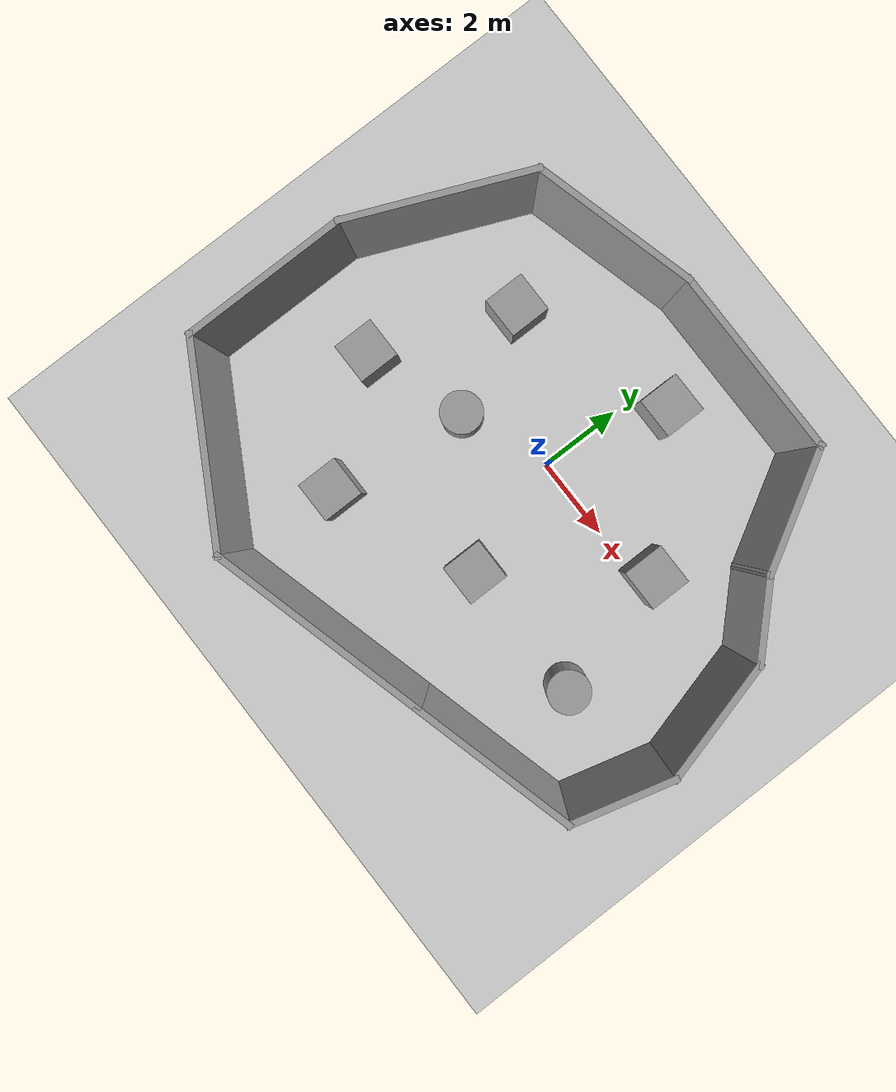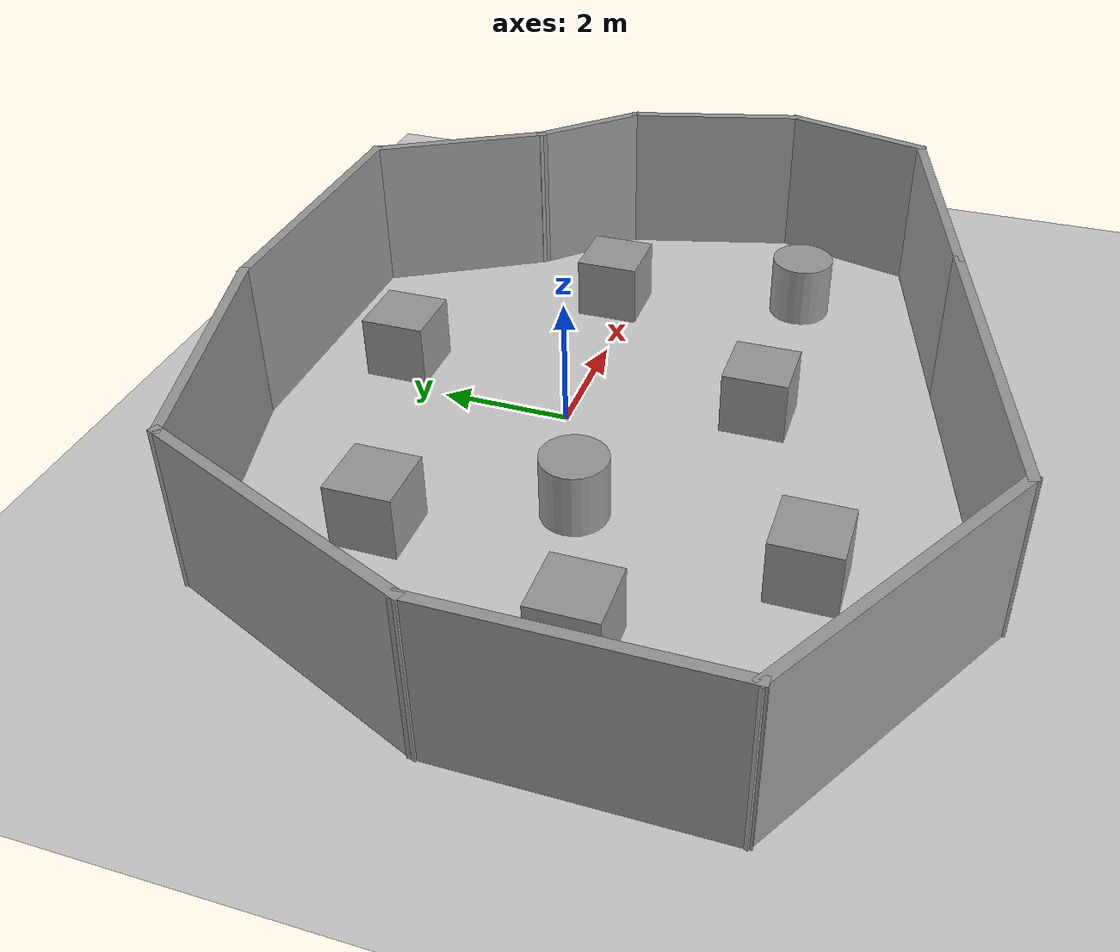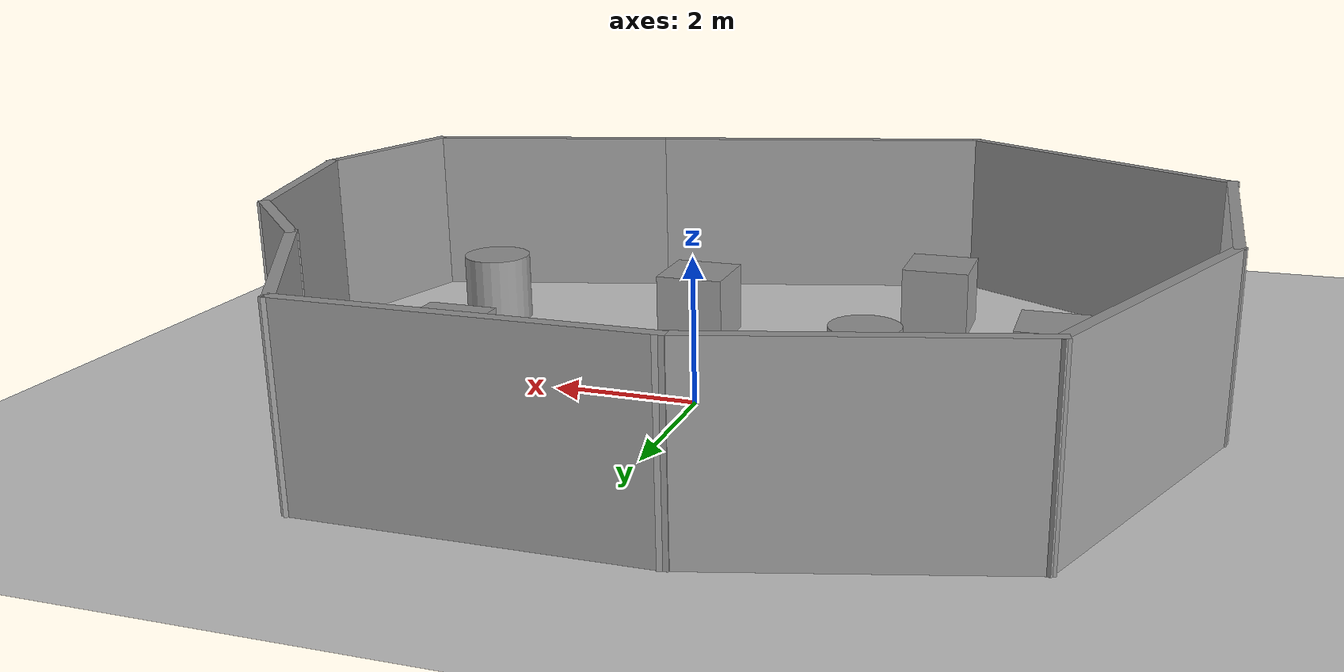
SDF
<sdf version="1.7">
 <world name="default">
  <light name="sun" type="directional">
   <pose>0 0 10 0 -0 0</pose>
   <diffuse>0.8 0.8 0.8 1</diffuse>
   <specular>0.2 0.2 0.2 1</specular>
   <attenuation>
    <range>1000</range>
    <constant>0.9</constant>
    <linear>0.01</linear>
    <quadratic>0.001</quadratic>
   </attenuation>
   <direction>-0.5 0.1 -0.9</direction>
   <spot><inner_angle>0</inner_angle><outer_angle>0</outer_angle><falloff>0</falloff></spot>
  </light>
  <model name="ground_plane">
   <static>1</static>
   <link name="link">
    <collision name="collision">
     <geometry><plane><normal>0 0 1</normal><size>100 100</size></plane></geometry>
     <surface><friction><ode><mu>100</mu><mu2>50</mu2></ode></friction></surface>
    </collision>
    <visual name="visual">
     <cast_shadows>0</cast_shadows>
     <geometry><plane><normal>0 0 1</normal><size>100 100</size></plane></geometry>
     <material>
      <script><uri>file://media/materials/scripts/gazebo.material</uri><name>Gazebo/Grey</name></script>
     </material>
    </visual>
   </link>
  </model>
  <gravity>0 0 -9.8</gravity>
  <magnetic_field>6e-06 2.3e-05 -4.2e-05</magnetic_field>
  <atmosphere type="adiabatic"/>
  <physics type="ode">
   <max_step_size>0.001</max_step_size>
   <real_time_factor>1</real_time_factor>
   <real_time_update_rate>1000</real_time_update_rate>
  </physics>
  <scene><ambient>0.4 0.4 0.4 1</ambient><background>0.7 0.7 0.7 1</background><shadows>1</shadows></scene>
  <audio><device>default</device></audio>
  <spherical_coordinates>
   <surface_model>EARTH_WGS84</surface_model>
   <latitude_deg>0</latitude_deg>
   <longitude_deg>0</longitude_deg>
   <elevation>0</elevation>
   <heading_deg>0</heading_deg>
  </spherical_coordinates>
  <model name="Untitled1">
   <pose>-0.033269 -1.09782 0 0 -0 0</pose>
   <link name="Wall_10">
    <collision name="Wall_10_Collision">
     <geometry><box><size>3 0.15 2.5</size></box></geometry>
     <pose>0 0 1.25 0 -0 0</pose>
    </collision>
    <visual name="Wall_10_Visual">
     <pose>0 0 1.25 0 -0 0</pose>
     <geometry><box><size>3 0.15 2.5</size></box></geometry>
     <material>
      <script><uri>file://media/materials/scripts/gazebo.material</uri><name>Gazebo/Grey</name></script>
      <ambient>1 1 1 1</ambient>
     </material>
     <meta><layer>0</layer></meta>
    </visual>
    <pose>6.25497 0.405019 0 0 -0 1.8326</pose>
   </link>
   <link name="Wall_11">
    <collision name="Wall_11_Collision">
     <geometry><box><size>2 0.15 2.5</size></box></geometry>
     <pose>0 0 1.25 0 -0 0</pose>
    </collision>
    <visual name="Wall_11_Visual">
     <pose>0 0 1.25 0 -0 0</pose>
     <geometry><box><size>2 0.15 2.5</size></box></geometry>
     <material>
      <script><uri>file://media/materials/scripts/gazebo.material</uri><name>Gazebo/Grey</name></script>
      <ambient>1 1 1 1</ambient>
     </material>
     <meta><layer>0</layer></meta>
    </visual>
    <pose>5.23208 2.43554 0 0 -0 2.35619</pose>
   </link>
   <link name="Wall_12">
    <collision name="Wall_12_Collision">
     <geometry><box><size>3 0.15 2.5</size></box></geometry>
     <pose>0 0 1.25 0 -0 0</pose>
    </collision>
    <visual name="Wall_12_Visual">
     <pose>0 0 1.25 0 -0 0</pose>
     <geometry><box><size>3 0.15 2.5</size></box></geometry>
     <material>
      <script><uri>file://media/materials/scripts/gazebo.material</uri><name>Gazebo/Grey</name></script>
      <ambient>1 1 1 1</ambient>
     </material>
     <meta><layer>0</layer></meta>
    </visual>
    <pose>3.86551 4.3237 0 0 -0 2.0944</pose>
   </link>
   <link name="Wall_13">
    <collision name="Wall_13_Collision">
     <geometry><box><size>4.5 0.15 2.5</size></box></geometry>
     <pose>0 0 1.25 0 -0 0</pose>
    </collision>
    <visual name="Wall_13_Visual">
     <pose>0 0 1.25 0 -0 0</pose>
     <geometry><box><size>4.5 0.15 2.5</size></box></geometry>
     <material>
      <script><uri>file://media/materials/scripts/gazebo.material</uri><name>Gazebo/Grey</name></script>
      <ambient>1 1 1 1</ambient>
     </material>
     <meta><layer>0</layer></meta>
    </visual>
    <pose>0.978005 5.55778 0 0 -0 3.14159</pose>
   </link>
   <link name="Wall_14">
    <collision name="Wall_14_Collision">
     <geometry><box><size>4 0.15 2.5</size></box></geometry>
     <pose>0 0 1.25 0 -0 0</pose>
    </collision>
    <visual name="Wall_14_Visual">
     <pose>0 0 1.25 0 -0 0</pose>
     <geometry><box><size>4 0.15 2.5</size></box></geometry>
     <material>
      <script><uri>file://media/materials/scripts/gazebo.material</uri><name>Gazebo/Grey</name></script>
      <ambient>1 1 1 1</ambient>
     </material>
     <meta><layer>0</layer></meta>
    </visual>
    <pose>-3.0564 5.05956 0 0 -0 -2.87979</pose>
   </link>
   <link name="Wall_15">
    <collision name="Wall_15_Collision">
     <geometry><box><size>4.46682 0.15 2.5</size></box></geometry>
     <pose>0 0 1.25 0 -0 0</pose>
    </collision>
    <visual name="Wall_15_Visual">
     <pose>0 0 1.25 0 -0 0</pose>
     <geometry><box><size>4.46682 0.15 2.5</size></box></geometry>
     <material>
      <script><uri>file://media/materials/scripts/gazebo.material</uri><name>Gazebo/Grey</name></script>
      <ambient>1 1 1 1</ambient>
     </material>
     <meta><layer>0</layer></meta>
    </visual>
    <pose>-5.7645 2.57677 0 0 -0 -1.97491</pose>
   </link>
   <link name="Wall_5">
    <collision name="Wall_5_Collision">
     <geometry><box><size>4 0.15 2.5</size></box></geometry>
     <pose>0 0 1.25 0 -0 0</pose>
    </collision>
    <visual name="Wall_5_Visual">
     <pose>0 0 1.25 0 -0 0</pose>
     <geometry><box><size>4 0.15 2.5</size></box></geometry>
     <material>
      <script><uri>file://media/materials/scripts/gazebo.material</uri><name>Gazebo/Grey</name></script>
      <ambient>1 1 1 1</ambient>
     </material>
     <meta><layer>0</layer></meta>
    </visual>
    <pose>-6.61319 -1.33278 0 0 -0 -1.5708</pose>
   </link>
   <link name="Wall_6">
    <collision name="Wall_6_Collision">
     <geometry><box><size>4.75 0.15 2.5</size></box></geometry>
     <pose>0 0 1.25 0 -0 0</pose>
    </collision>
    <visual name="Wall_6_Visual">
     <pose>0 0 1.25 0 -0 0</pose>
     <geometry><box><size>4.75 0.15 2.5</size></box></geometry>
     <material>
      <script><uri>file://media/materials/scripts/gazebo.material</uri><name>Gazebo/Grey</name></script>
      <ambient>1 1 1 1</ambient>
     </material>
     <meta><layer>0</layer></meta>
    </visual>
    <pose>-4.62133 -4.40778 0 0 -0 -0.523599</pose>
   </link>
   <link name="Wall_7">
    <collision name="Wall_7_Collision">
     <geometry><box><size>5.25 0.15 2.5</size></box></geometry>
     <pose>0 0 1.25 0 -0 0</pose>
    </collision>
    <visual name="Wall_7_Visual">
     <pose>0 0 1.25 0 -0 0</pose>
     <geometry><box><size>5.25 0.15 2.5</size></box></geometry>
     <material>
      <script><uri>file://media/materials/scripts/gazebo.material</uri><name>Gazebo/Grey</name></script>
      <ambient>1 1 1 1</ambient>
     </material>
     <meta><layer>0</layer></meta>
    </visual>
    <pose>-0.166363 -4.89779 0 0 -0 0.261799</pose>
   </link>
   <link name="Wall_8">
    <collision name="Wall_8_Collision">
     <geometry><box><size>4 0.15 2.5</size></box></geometry>
     <pose>0 0 1.25 0 -0 0</pose>
    </collision>
    <visual name="Wall_8_Visual">
     <pose>0 0 1.25 0 -0 0</pose>
     <geometry><box><size>4 0.15 2.5</size></box></geometry>
     <material>
      <script><uri>file://media/materials/scripts/gazebo.material</uri><name>Gazebo/Grey</name></script>
      <ambient>1 1 1 1</ambient>
     </material>
     <meta><layer>0</layer></meta>
    </visual>
    <pose>4.15616 -3.73958 0 0 -0 0.261799</pose>
   </link>
   <link name="Wall_9">
    <collision name="Wall_9_Collision">
     <geometry><box><size>2.5 0.15 2.5</size></box></geometry>
     <pose>0 0 1.25 0 -0 0</pose>
    </collision>
    <visual name="Wall_9_Visual">
     <pose>0 0 1.25 0 -0 0</pose>
     <geometry><box><size>2.5 0.15 2.5</size></box></geometry>
     <material>
      <script><uri>file://media/materials/scripts/gazebo.material</uri><name>Gazebo/Grey</name></script>
      <ambient>1 1 1 1</ambient>
     </material>
     <meta><layer>0</layer></meta>
    </visual>
    <pose>6.31967 -2.10639 0 0 -0 1.309</pose>
   </link>
   <static>1</static>
  </model>
  <model name="unit_cylinder">
   <pose>-2.0901 -0.855011 0.499992 -3e-06 4e-06 0</pose>
   <link name="link">
    <inertial>
     <mass>1</mass>
     <inertia><ixx>0.145833</ixx><ixy>0</ixy><ixz>0</ixz><iyy>0.145833</iyy><iyz>0</iyz><izz>0.125</izz></inertia>
    </inertial>
    <collision name="collision">
     <geometry><cylinder><radius>0.5</radius><length>1</length></cylinder></geometry>
    </collision>
    <visual name="visual">
     <geometry><cylinder><radius>0.5</radius><length>1</length></cylinder></geometry>
     <material>
      <script><name>Gazebo/Grey</name><uri>file://media/materials/scripts/gazebo.material</uri></script>
     </material>
    </visual>
   </link>
  </model>
  <model name="unit_box">
   <pose>0.899185 -2.79949 0.499995 0 1e-05 0</pose>
   <link name="link">
    <inertial>
     <mass>1</mass>
     <inertia>
      <ixx>0.166667</ixx>
      <ixy>0</ixy>
      <ixz>0</ixz>
      <iyy>0.166667</iyy>
      <iyz>0</iyz>
      <izz>0.166667</izz>
     </inertia>
    </inertial>
    <collision name="collision"><geometry><box><size>1 1 1</size></box></geometry></collision>
    <visual name="visual">
     <geometry><box><size>1 1 1</size></box></geometry>
     <material>
      <script><name>Gazebo/Grey</name><uri>file://media/materials/scripts/gazebo.material</uri></script>
     </material>
    </visual>
   </link>
  </model>
  <model name="unit_box_0">
   <pose>3.45466 0.30661 0.499995 -1e-05 -0 -0</pose>
   <link name="link">
    <inertial>
     <mass>1</mass>
     <inertia>
      <ixx>0.166667</ixx>
      <ixy>0</ixy>
      <ixz>0</ixz>
      <iyy>0.166667</iyy>
      <iyz>0</iyz>
      <izz>0.166667</izz>
     </inertia>
    </inertial>
    <collision name="collision"><geometry><box><size>1 1 1</size></box></geometry></collision>
    <visual name="visual">
     <geometry><box><size>1 1 1</size></box></geometry>
     <material>
      <script><name>Gazebo/Grey</name><uri>file://media/materials/scripts/gazebo.material</uri></script>
     </material>
    </visual>
   </link>
  </model>
  <model name="unit_box_1">
   <pose>0.665681 2.9384 0.499995 0 1e-05 0</pose>
   <link name="link">
    <inertial>
     <mass>1</mass>
     <inertia>
      <ixx>0.166667</ixx>
      <ixy>0</ixy>
      <ixz>0</ixz>
      <iyy>0.166667</iyy>
      <iyz>0</iyz>
      <izz>0.166667</izz>
     </inertia>
    </inertial>
    <collision name="collision"><geometry><box><size>1 1 1</size></box></geometry></collision>
    <visual name="visual">
     <geometry><box><size>1 1 1</size></box></geometry>
     <material>
      <script><name>Gazebo/Grey</name><uri>file://media/materials/scripts/gazebo.material</uri></script>
     </material>
    </visual>
   </link>
  </model>
  <model name="unit_box_2">
   <pose>-3.23057 1.6021 0.499995 -1e-05 -0 -0</pose>
   <link name="link">
    <inertial>
     <mass>1</mass>
     <inertia>
      <ixx>0.166667</ixx>
      <ixy>0</ixy>
      <ixz>0</ixz>
      <iyy>0.166667</iyy>
      <iyz>0</iyz>
      <izz>0.166667</izz>
     </inertia>
    </inertial>
    <collision name="collision"><geometry><box><size>1 1 1</size></box></geometry></collision>
    <visual name="visual">
     <geometry><box><size>1 1 1</size></box></geometry>
     <material>
      <script><name>Gazebo/Grey</name><uri>file://media/materials/scripts/gazebo.material</uri></script>
     </material>
    </visual>
   </link>
  </model>
  <model name="unit_box_3">
   <pose>-4.49113 -1.69 0.499995 0 1e-05 0</pose>
   <link name="link">
    <inertial>
     <mass>1</mass>
     <inertia>
      <ixx>0.166667</ixx>
      <ixy>0</ixy>
      <ixz>0</ixz>
      <iyy>0.166667</iyy>
      <iyz>0</iyz>
      <izz>0.166667</izz>
     </inertia>
    </inertial>
    <collision name="collision"><geometry><box><size>1 1 1</size></box></geometry></collision>
    <visual name="visual">
     <geometry><box><size>1 1 1</size></box></geometry>
     <material>
      <script><name>Gazebo/Grey</name><uri>file://media/materials/scripts/gazebo.material</uri></script>
     </material>
    </visual>
   </link>
  </model>
  <model name="unit_box_4">
   <pose>-2.52608 -4.2112 0.499995 -1e-05 -0 0</pose>
   <link name="link">
    <inertial>
     <mass>1</mass>
     <inertia>
      <ixx>0.166667</ixx>
      <ixy>0</ixy>
      <ixz>0</ixz>
      <iyy>0.166667</iyy>
      <iyz>0</iyz>
      <izz>0.166667</izz>
     </inertia>
    </inertial>
    <collision name="collision"><geometry><box><size>1 1 1</size></box></geometry></collision>
    <visual name="visual">
     <geometry><box><size>1 1 1</size></box></geometry>
     <material>
      <script><name>Gazebo/Grey</name><uri>file://media/materials/scripts/gazebo.material</uri></script>
     </material>
    </visual>
   </link>
  </model>
  <model name="unit_cylinder_0">
   <pose>4.24399 -2.77509 0.499997 3e-06 4e-06 -0</pose>
   <link name="link">
    <inertial>
     <mass>1</mass>
     <inertia><ixx>0.145833</ixx><ixy>0</ixy><ixz>0</ixz><iyy>0.145833</iyy><iyz>0</iyz><izz>0.125</izz></inertia>
    </inertial>
    <collision name="collision">
     <geometry><cylinder><radius>0.5</radius><length>1</length></cylinder></geometry>
    </collision>
    <visual name="visual">
     <geometry><cylinder><radius>0.5</radius><length>1</length></cylinder></geometry>
     <material>
      <script><name>Gazebo/Grey</name><uri>file://media/materials/scripts/gazebo.material</uri></script>
     </material>
    </visual>
   </link>
  </model>
 </world>
</sdf>
